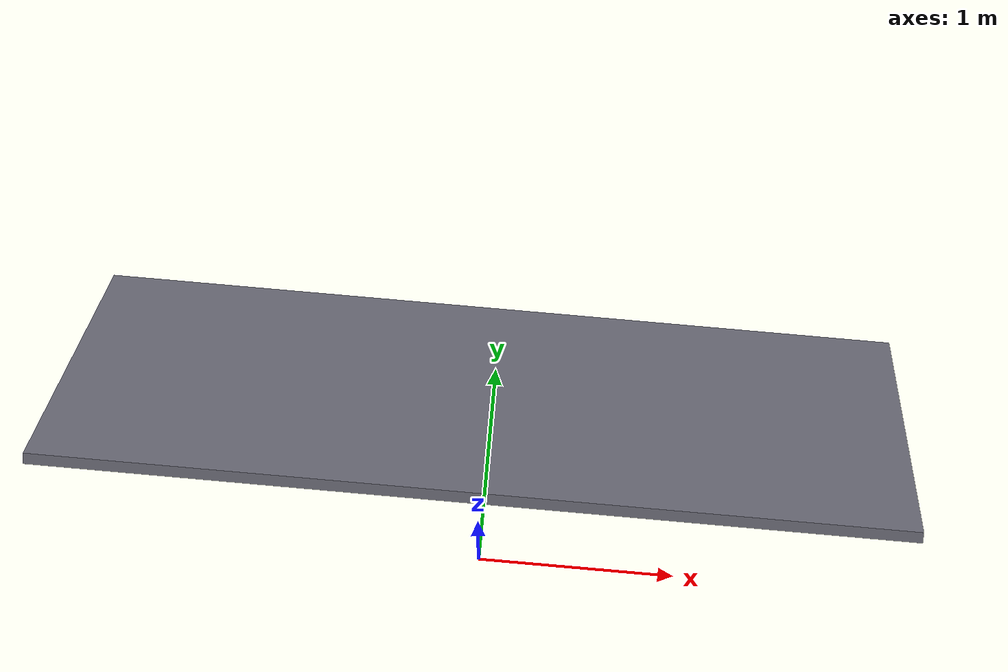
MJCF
<mujoco model="inclined_wall">
  <worldbody>
    <!-- Inclined wall: rotate about x-axis by specified angle -->
    <!-- Default: 30 degrees; modify pos/quat for 60 degrees -->
    <body name="wall_inclined" pos="0 0.5 1.5"
          quat="0.9659 0.2588 0 0">
      <geom name="inclined_wall"
            type="box"
            pos="0 0 0"
            size="2.0 0.025 1.5"
            friction="0.5 0.02 0.001"
            solref="0.01 1"
            solimp="0.95 0.99 0.001"
            rgba="0.45 0.45 0.50 1"
            contype="1"
            conaffinity="1"/>
    </body>
  </worldbody>
</mujoco>
